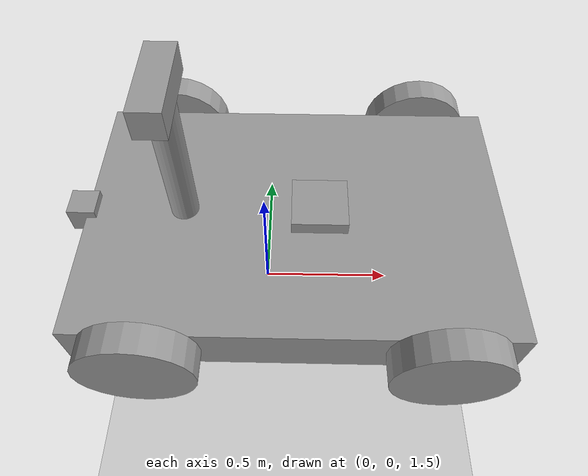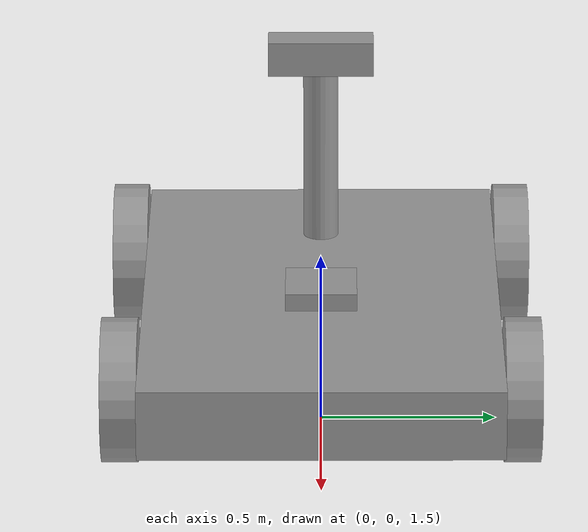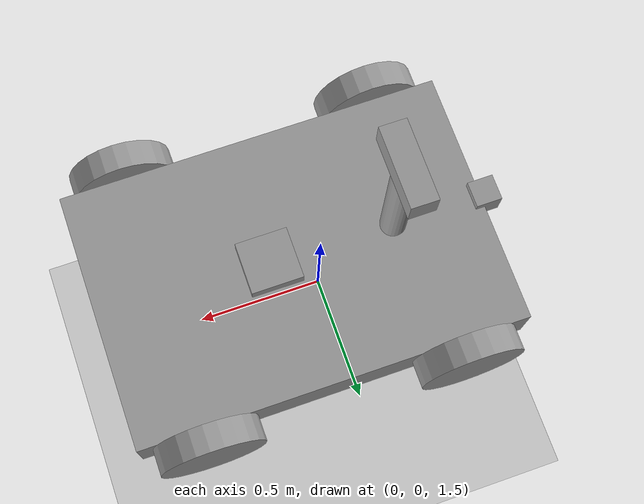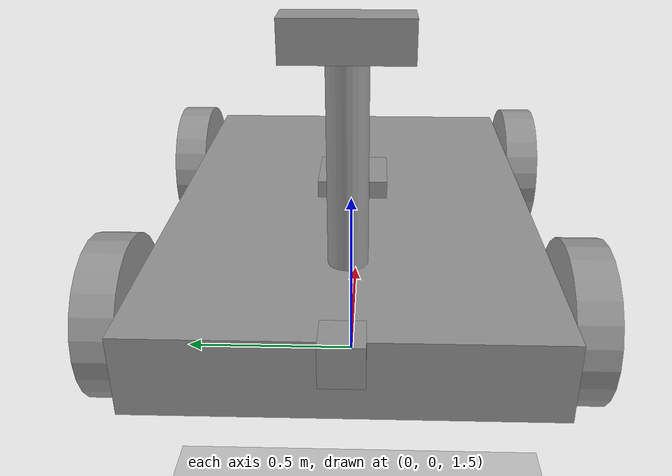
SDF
<!-- World for wheeled_model_enhanced. Created based on test_world. Contains only sun, ground plane and targeted model -->
<sdf version="1.7">
    <world name="test_world">
        <plugin filename="ignition-gazebo-physics-system" name="gz::sim::systems::Physics">
        </plugin>
        <plugin filename="ignition-gazebo-sensors-system" name="gz::sim::systems::Sensors">
            <render_engine>ogre</render_engine>
        </plugin>
        <plugin filename="ignition-gazebo-user-commands-system" name="gz::sim::systems::UserCommands">
        </plugin>
        <plugin filename="ignition-gazebo-scene-broadcaster-system" name="gz::sim::systems::SceneBroadcaster">
        </plugin>
        <plugin
            filename="ignition-gazebo-imu-system"
            name="gz::sim::systems::Imu">
        </plugin>
        <plugin
            filename="ignition-gazebo-navsat-system"
            name="ignition::gazebo::systems::NavSat">
        </plugin>
        <spherical_coordinates>
            <surface_model>EARTH_WGS84</surface_model>
            <world_frame_orientation>ENU</world_frame_orientation>
            <latitude_deg>-22.986687</latitude_deg>
            <longitude_deg>-43.202501</longitude_deg>
            <elevation>0</elevation>
            <heading_deg>0</heading_deg>
        </spherical_coordinates>

        <include>
            <uri>
                https://fuel.gazebosim.org/1.0/OpenRobotics/models/Sun
            </uri>
        </include>
        <include>
            <uri>
                ground_plane
            </uri>
        </include>
        <include>
            <pose>0 0 2 0 0 0</pose>
            <uri>
                wheeled_model_enhanced
            </uri>
        </include>
    </world>
</sdf>

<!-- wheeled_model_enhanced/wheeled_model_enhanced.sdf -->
<sdf version='1.7'>
  <model name='wheeled_model_enhanced'>
    <link name='base_link'>
      <inertial>
        <mass>1</mass>
        <inertia>
          <ixx>0.166667</ixx>
          <ixy>0</ixy>
          <ixz>0</ixz>
          <iyy>0.166667</iyy>
          <iyz>0</iyz>
          <izz>0.166667</izz>
        </inertia>
        <pose>0 0 0 0 -0 0</pose>
      </inertial>
      <pose>0.114286 -0 -0.142857 0 -0 0</pose>
      <gravity>1</gravity>
      <self_collide>0</self_collide>
      <kinematic>0</kinematic>
      <enable_wind>0</enable_wind>
      <visual name='visual'>
        <pose>0 0 0 0 -0 0</pose>
        <geometry>
          <box>
            <size>1.5 1 0.2</size>
          </box>
        </geometry>
        <material>
          <lighting>1</lighting>
          <script>
            <uri>file://media/materials/scripts/gazebo.material</uri>
            <name>Gazebo/Grey</name>
          </script>
          <shader type='pixel'>
            <normal_map>__default__</normal_map>
          </shader>
          <ambient>0.3 0.3 0.3 1</ambient>
          <diffuse>0.7 0.7 0.7 1</diffuse>
          <specular>0.01 0.01 0.01 1</specular>
          <emissive>0 0 0 1</emissive>
        </material>
        <transparency>0</transparency>
        <cast_shadows>1</cast_shadows>
      </visual>
      <collision name='collision'>
        <laser_retro>0</laser_retro>
        <max_contacts>10</max_contacts>
        <pose>0 0 0 0 -0 0</pose>
        <geometry>
          <box>
            <size>1.5 1 0.2</size>
          </box>
        </geometry>
        <surface>
          <friction>
            <ode>
              <mu>1</mu>
              <mu2>1</mu2>
              <fdir1>0 0 0</fdir1>
              <slip1>0</slip1>
              <slip2>0</slip2>
            </ode>
            <torsional>
              <coefficient>1</coefficient>
              <patch_radius>0</patch_radius>
              <surface_radius>0</surface_radius>
              <use_patch_radius>1</use_patch_radius>
              <ode>
                <slip>0</slip>
              </ode>
            </torsional>
          </friction>
          <bounce>
            <restitution_coefficient>0</restitution_coefficient>
            <threshold>1e+06</threshold>
          </bounce>
          <contact>
            <collide_without_contact>0</collide_without_contact>
            <collide_without_contact_bitmask>1</collide_without_contact_bitmask>
            <collide_bitmask>1</collide_bitmask>
            <ode>
              <soft_cfm>0</soft_cfm>
              <soft_erp>0.2</soft_erp>
              <kp>1e+13</kp>
              <kd>1</kd>
              <max_vel>0.01</max_vel>
              <min_depth>0</min_depth>
            </ode>
            <bullet>
              <split_impulse>1</split_impulse>
              <split_impulse_penetration_threshold>-0.01</split_impulse_penetration_threshold>
              <soft_cfm>0</soft_cfm>
              <soft_erp>0.2</soft_erp>
              <kp>1e+13</kp>
              <kd>1</kd>
            </bullet>
          </contact>
        </surface>
      </collision>
    </link>
    <link name='camera_link'>
      <inertial>
        <mass>1</mass>
        <inertia>
          <ixx>0.166667</ixx>
          <ixy>0</ixy>
          <ixz>0</ixz>
          <iyy>0.166667</iyy>
          <iyz>0</iyz>
          <izz>0.166667</izz>
        </inertia>
        <pose>0 0 0 0 -0 0</pose>
      </inertial>
      <pose>-0.285714 0 0.507143 0 -0 3.14</pose>
      <gravity>1</gravity>
      <self_collide>0</self_collide>
      <kinematic>0</kinematic>
      <enable_wind>0</enable_wind>
      <sensor name='camera' type='camera'>
        <camera>
          <horizontal_fov>1.047</horizontal_fov>
          <image>
            <width>320</width>
            <height>240</height>
          </image>
          <clip>
            <near>0.1</near>
            <far>100</far>
          </clip>
        </camera>
        <always_on>1</always_on>
        <update_rate>30</update_rate>
        <visualize>1</visualize>
        <topic>camera</topic>
      </sensor>
      <visual name='visual'>
        <pose>0 0 0 0 -0 0</pose>
        <geometry>
          <box>
            <size>0.1 0.3 0.1</size>
          </box>
        </geometry>
        <material>
          <lighting>1</lighting>
          <script>
            <uri>file://media/materials/scripts/gazebo.material</uri>
            <name>Gazebo/Grey</name>
          </script>
          <shader type='pixel'>
            <normal_map>__default__</normal_map>
          </shader>
          <ambient>0.3 0.3 0.3 1</ambient>
          <diffuse>0.7 0.7 0.7 1</diffuse>
          <specular>0.01 0.01 0.01 1</specular>
          <emissive>0 0 0 1</emissive>
        </material>
        <transparency>0</transparency>
        <cast_shadows>1</cast_shadows>
      </visual>
      <collision name='collision'>
        <laser_retro>0</laser_retro>
        <max_contacts>10</max_contacts>
        <pose>0 0 0 0 -0 0</pose>
        <geometry>
          <box>
            <size>0.1 0.3 0.1</size>
          </box>
        </geometry>
        <surface>
          <friction>
            <ode>
              <mu>1</mu>
              <mu2>1</mu2>
              <fdir1>0 0 0</fdir1>
              <slip1>0</slip1>
              <slip2>0</slip2>
            </ode>
            <torsional>
              <coefficient>1</coefficient>
              <patch_radius>0</patch_radius>
              <surface_radius>0</surface_radius>
              <use_patch_radius>1</use_patch_radius>
              <ode>
                <slip>0</slip>
              </ode>
            </torsional>
          </friction>
          <bounce>
            <restitution_coefficient>0</restitution_coefficient>
            <threshold>1e+06</threshold>
          </bounce>
          <contact>
            <collide_without_contact>0</collide_without_contact>
            <collide_without_contact_bitmask>1</collide_without_contact_bitmask>
            <collide_bitmask>1</collide_bitmask>
            <ode>
              <soft_cfm>0</soft_cfm>
              <soft_erp>0.2</soft_erp>
              <kp>1e+13</kp>
              <kd>1</kd>
              <max_vel>0.01</max_vel>
              <min_depth>0</min_depth>
            </ode>
            <bullet>
              <split_impulse>1</split_impulse>
              <split_impulse_penetration_threshold>-0.01</split_impulse_penetration_threshold>
              <soft_cfm>0</soft_cfm>
              <soft_erp>0.2</soft_erp>
              <kp>1e+13</kp>
              <kd>1</kd>
            </bullet>
          </contact>
        </surface>
      </collision>
    </link>
    <link name='left_back_wheel_link'>
      <inertial>
        <mass>1</mass>
        <inertia>
          <ixx>0.145833</ixx>
          <ixy>0</ixy>
          <ixz>0</ixz>
          <iyy>0.145833</iyy>
          <iyz>0</iyz>
          <izz>0.125</izz>
        </inertia>
        <pose>0 0 0 0 -0 0</pose>
      </inertial>
      <pose>0.614286 -0.55 -0.142857 1.57029 -0 0</pose>
      <gravity>1</gravity>
      <self_collide>0</self_collide>
      <kinematic>0</kinematic>
      <enable_wind>0</enable_wind>
      <visual name='visual'>
        <pose>0 0 0 0 -0 0</pose>
        <geometry>
          <cylinder>
            <radius>0.2</radius>
            <length>0.1</length>
          </cylinder>
        </geometry>
        <material>
          <lighting>1</lighting>
          <script>
            <uri>file://media/materials/scripts/gazebo.material</uri>
            <name>Gazebo/Grey</name>
          </script>
          <shader type='pixel'>
            <normal_map>__default__</normal_map>
          </shader>
          <ambient>0.3 0.3 0.3 1</ambient>
          <diffuse>0.7 0.7 0.7 1</diffuse>
          <specular>0.01 0.01 0.01 1</specular>
          <emissive>0 0 0 1</emissive>
        </material>
        <transparency>0</transparency>
        <cast_shadows>1</cast_shadows>
      </visual>
      <collision name='collision'>
        <laser_retro>0</laser_retro>
        <max_contacts>10</max_contacts>
        <pose>0 0 0 0 -0 0</pose>
        <geometry>
          <cylinder>
            <radius>0.2</radius>
            <length>0.1</length>
          </cylinder>
        </geometry>
        <surface>
          <friction>
            <ode>
              <mu>1</mu>
              <mu2>1</mu2>
              <fdir1>0 0 0</fdir1>
              <slip1>0</slip1>
              <slip2>0</slip2>
            </ode>
            <torsional>
              <coefficient>1</coefficient>
              <patch_radius>0</patch_radius>
              <surface_radius>0</surface_radius>
              <use_patch_radius>1</use_patch_radius>
              <ode>
                <slip>0</slip>
              </ode>
            </torsional>
          </friction>
          <bounce>
            <restitution_coefficient>0</restitution_coefficient>
            <threshold>1e+06</threshold>
          </bounce>
          <contact>
            <collide_without_contact>0</collide_without_contact>
            <collide_without_contact_bitmask>1</collide_without_contact_bitmask>
            <collide_bitmask>1</collide_bitmask>
            <ode>
              <soft_cfm>0</soft_cfm>
              <soft_erp>0.2</soft_erp>
              <kp>1e+13</kp>
              <kd>1</kd>
              <max_vel>0.01</max_vel>
              <min_depth>0</min_depth>
            </ode>
            <bullet>
              <split_impulse>1</split_impulse>
              <split_impulse_penetration_threshold>-0.01</split_impulse_penetration_threshold>
              <soft_cfm>0</soft_cfm>
              <soft_erp>0.2</soft_erp>
              <kp>1e+13</kp>
              <kd>1</kd>
            </bullet>
          </contact>
        </surface>
      </collision>
    </link>
    <link name='left_front_wheel_link'>
      <inertial>
        <mass>1</mass>
        <inertia>
          <ixx>0.145833</ixx>
          <ixy>0</ixy>
          <ixz>0</ixz>
          <iyy>0.145833</iyy>
          <iyz>0</iyz>
          <izz>0.125</izz>
        </inertia>
        <pose>0 0 0 0 -0 0</pose>
      </inertial>
      <pose>-0.385714 -0.55 -0.142857 1.57029 -0 0</pose>
      <gravity>1</gravity>
      <self_collide>0</self_collide>
      <kinematic>0</kinematic>
      <enable_wind>0</enable_wind>
      <visual name='visual'>
        <pose>0 0 0 0 -0 0</pose>
        <geometry>
          <cylinder>
            <radius>0.2</radius>
            <length>0.1</length>
          </cylinder>
        </geometry>
        <material>
          <lighting>1</lighting>
          <script>
            <uri>file://media/materials/scripts/gazebo.material</uri>
            <name>Gazebo/Grey</name>
          </script>
          <shader type='pixel'>
            <normal_map>__default__</normal_map>
          </shader>
          <ambient>0.3 0.3 0.3 1</ambient>
          <diffuse>0.7 0.7 0.7 1</diffuse>
          <specular>0.01 0.01 0.01 1</specular>
          <emissive>0 0 0 1</emissive>
        </material>
        <transparency>0</transparency>
        <cast_shadows>1</cast_shadows>
      </visual>
      <collision name='collision'>
        <laser_retro>0</laser_retro>
        <max_contacts>10</max_contacts>
        <pose>0 0 0 0 -0 0</pose>
        <geometry>
          <cylinder>
            <radius>0.2</radius>
            <length>0.1</length>
          </cylinder>
        </geometry>
        <surface>
          <friction>
            <ode>
              <mu>1</mu>
              <mu2>1</mu2>
              <fdir1>0 0 0</fdir1>
              <slip1>0</slip1>
              <slip2>0</slip2>
            </ode>
            <torsional>
              <coefficient>1</coefficient>
              <patch_radius>0</patch_radius>
              <surface_radius>0</surface_radius>
              <use_patch_radius>1</use_patch_radius>
              <ode>
                <slip>0</slip>
              </ode>
            </torsional>
          </friction>
          <bounce>
            <restitution_coefficient>0</restitution_coefficient>
            <threshold>1e+06</threshold>
          </bounce>
          <contact>
            <collide_without_contact>0</collide_without_contact>
            <collide_without_contact_bitmask>1</collide_without_contact_bitmask>
            <collide_bitmask>1</collide_bitmask>
            <ode>
              <soft_cfm>0</soft_cfm>
              <soft_erp>0.2</soft_erp>
              <kp>1e+13</kp>
              <kd>1</kd>
              <max_vel>0.01</max_vel>
              <min_depth>0</min_depth>
            </ode>
            <bullet>
              <split_impulse>1</split_impulse>
              <split_impulse_penetration_threshold>-0.01</split_impulse_penetration_threshold>
              <soft_cfm>0</soft_cfm>
              <soft_erp>0.2</soft_erp>
              <kp>1e+13</kp>
              <kd>1</kd>
            </bullet>
          </contact>
        </surface>
      </collision>
    </link>
    <link name='lidar_link'>
      <inertial>
        <mass>1</mass>
        <inertia>
          <ixx>0.166667</ixx>
          <ixy>0</ixy>
          <ixz>0</ixz>
          <iyy>0.166667</iyy>
          <iyz>0</iyz>
          <izz>0.166667</izz>
        </inertia>
        <pose>0 0 0 0 -0 0</pose>
      </inertial>
      <pose>-0.65 0 -0.062226 -1e-06 1e-06 3.14159</pose>
      <gravity>1</gravity>
      <self_collide>0</self_collide>
      <kinematic>0</kinematic>
      <enable_wind>0</enable_wind>
      <sensor name='gpu_lidar' type='gpu_lidar'>
        <topic>lidar</topic>
        <update_rate>10</update_rate>
        <lidar>
          <scan>
            <horizontal>
              <samples>640</samples>
              <resolution>1</resolution>
              <min_angle>-1.396263</min_angle>
              <max_angle>1.396263</max_angle>
            </horizontal>
            <vertical>
              <samples>16</samples>
              <resolution>1</resolution>
              <min_angle>-0.261799</min_angle>
              <max_angle>0.261799</max_angle>
            </vertical>
          </scan>
          <range>
            <min>0.08</min>
            <max>10.0</max>
            <resolution>0.01</resolution>
          </range>
        </lidar>
        <alwaysOn>1</alwaysOn>
        <visualize>true</visualize>
      </sensor>
      <visual name='visual'>
        <pose>0 0 0 0 -0 0</pose>
        <geometry>
          <box>
            <size>0.1 0.1 0.1</size>
          </box>
        </geometry>
        <material>
          <lighting>1</lighting>
          <script>
            <uri>file://media/materials/scripts/gazebo.material</uri>
            <name>Gazebo/Grey</name>
          </script>
          <shader type='pixel'>
            <normal_map>__default__</normal_map>
          </shader>
          <ambient>0.3 0.3 0.3 1</ambient>
          <diffuse>0.7 0.7 0.7 1</diffuse>
          <specular>0.01 0.01 0.01 1</specular>
          <emissive>0 0 0 1</emissive>
        </material>
        <transparency>0</transparency>
        <cast_shadows>1</cast_shadows>
      </visual>
      <collision name='collision'>
        <laser_retro>0</laser_retro>
        <max_contacts>10</max_contacts>
        <pose>0 0 0 0 -0 0</pose>
        <geometry>
          <box>
            <size>0.1 0.1 0.1</size>
          </box>
        </geometry>
        <surface>
          <friction>
            <ode>
              <mu>1</mu>
              <mu2>1</mu2>
              <fdir1>0 0 0</fdir1>
              <slip1>0</slip1>
              <slip2>0</slip2>
            </ode>
            <torsional>
              <coefficient>1</coefficient>
              <patch_radius>0</patch_radius>
              <surface_radius>0</surface_radius>
              <use_patch_radius>1</use_patch_radius>
              <ode>
                <slip>0</slip>
              </ode>
            </torsional>
          </friction>
          <bounce>
            <restitution_coefficient>0</restitution_coefficient>
            <threshold>1e+06</threshold>
          </bounce>
          <contact>
            <collide_without_contact>0</collide_without_contact>
            <collide_without_contact_bitmask>1</collide_without_contact_bitmask>
            <collide_bitmask>1</collide_bitmask>
            <ode>
              <soft_cfm>0</soft_cfm>
              <soft_erp>0.2</soft_erp>
              <kp>1e+13</kp>
              <kd>1</kd>
              <max_vel>0.01</max_vel>
              <min_depth>0</min_depth>
            </ode>
            <bullet>
              <split_impulse>1</split_impulse>
              <split_impulse_penetration_threshold>-0.01</split_impulse_penetration_threshold>
              <soft_cfm>0</soft_cfm>
              <soft_erp>0.2</soft_erp>
              <kp>1e+13</kp>
              <kd>1</kd>
            </bullet>
          </contact>
        </surface>
      </collision>
    </link>
    <link name='right_back_wheel_link'>
      <inertial>
        <mass>1</mass>
        <inertia>
          <ixx>0.145833</ixx>
          <ixy>0</ixy>
          <ixz>0</ixz>
          <iyy>0.145833</iyy>
          <iyz>0</iyz>
          <izz>0.125</izz>
        </inertia>
        <pose>0 0 0 0 -0 0</pose>
      </inertial>
      <pose>0.614286 0.55 -0.142857 1.57029 -0 0</pose>
      <gravity>1</gravity>
      <self_collide>0</self_collide>
      <kinematic>0</kinematic>
      <enable_wind>0</enable_wind>
      <visual name='visual'>
        <pose>0 0 0 0 -0 0</pose>
        <geometry>
          <cylinder>
            <radius>0.2</radius>
            <length>0.1</length>
          </cylinder>
        </geometry>
        <material>
          <lighting>1</lighting>
          <script>
            <uri>file://media/materials/scripts/gazebo.material</uri>
            <name>Gazebo/Grey</name>
          </script>
          <shader type='pixel'>
            <normal_map>__default__</normal_map>
          </shader>
          <ambient>0.3 0.3 0.3 1</ambient>
          <diffuse>0.7 0.7 0.7 1</diffuse>
          <specular>0.01 0.01 0.01 1</specular>
          <emissive>0 0 0 1</emissive>
        </material>
        <transparency>0</transparency>
        <cast_shadows>1</cast_shadows>
      </visual>
      <collision name='collision'>
        <laser_retro>0</laser_retro>
        <max_contacts>10</max_contacts>
        <pose>0 0 0 0 -0 0</pose>
        <geometry>
          <cylinder>
            <radius>0.2</radius>
            <length>0.1</length>
          </cylinder>
        </geometry>
        <surface>
          <friction>
            <ode>
              <mu>1</mu>
              <mu2>1</mu2>
              <fdir1>0 0 0</fdir1>
              <slip1>0</slip1>
              <slip2>0</slip2>
            </ode>
            <torsional>
              <coefficient>1</coefficient>
              <patch_radius>0</patch_radius>
              <surface_radius>0</surface_radius>
              <use_patch_radius>1</use_patch_radius>
              <ode>
                <slip>0</slip>
              </ode>
            </torsional>
          </friction>
          <bounce>
            <restitution_coefficient>0</restitution_coefficient>
            <threshold>1e+06</threshold>
          </bounce>
          <contact>
            <collide_without_contact>0</collide_without_contact>
            <collide_without_contact_bitmask>1</collide_without_contact_bitmask>
            <collide_bitmask>1</collide_bitmask>
            <ode>
              <soft_cfm>0</soft_cfm>
              <soft_erp>0.2</soft_erp>
              <kp>1e+13</kp>
              <kd>1</kd>
              <max_vel>0.01</max_vel>
              <min_depth>0</min_depth>
            </ode>
            <bullet>
              <split_impulse>1</split_impulse>
              <split_impulse_penetration_threshold>-0.01</split_impulse_penetration_threshold>
              <soft_cfm>0</soft_cfm>
              <soft_erp>0.2</soft_erp>
              <kp>1e+13</kp>
              <kd>1</kd>
            </bullet>
          </contact>
        </surface>
      </collision>
    </link>
    <link name='right_front_wheel_link'>
      <inertial>
        <mass>1</mass>
        <inertia>
          <ixx>0.145833</ixx>
          <ixy>0</ixy>
          <ixz>0</ixz>
          <iyy>0.145833</iyy>
          <iyz>0</iyz>
          <izz>0.125</izz>
        </inertia>
        <pose>0 0 0 0 -0 0</pose>
      </inertial>
      <pose>-0.385714 0.55 -0.142857 1.57029 -0 0</pose>
      <gravity>1</gravity>
      <self_collide>0</self_collide>
      <kinematic>0</kinematic>
      <enable_wind>0</enable_wind>
      <visual name='visual'>
        <pose>0 0 0 0 -0 0</pose>
        <geometry>
          <cylinder>
            <radius>0.2</radius>
            <length>0.1</length>
          </cylinder>
        </geometry>
        <material>
          <lighting>1</lighting>
          <script>
            <uri>file://media/materials/scripts/gazebo.material</uri>
            <name>Gazebo/Grey</name>
          </script>
          <shader type='pixel'>
            <normal_map>__default__</normal_map>
          </shader>
          <ambient>0.3 0.3 0.3 1</ambient>
          <diffuse>0.7 0.7 0.7 1</diffuse>
          <specular>0.01 0.01 0.01 1</specular>
          <emissive>0 0 0 1</emissive>
        </material>
        <transparency>0</transparency>
        <cast_shadows>1</cast_shadows>
      </visual>
      <collision name='collision'>
        <laser_retro>0</laser_retro>
        <max_contacts>10</max_contacts>
        <pose>0 0 0 0 -0 0</pose>
        <geometry>
          <cylinder>
            <radius>0.2</radius>
            <length>0.1</length>
          </cylinder>
        </geometry>
        <surface>
          <friction>
            <ode>
              <mu>1</mu>
              <mu2>1</mu2>
              <fdir1>0 0 0</fdir1>
              <slip1>0</slip1>
              <slip2>0</slip2>
            </ode>
            <torsional>
              <coefficient>1</coefficient>
              <patch_radius>0</patch_radius>
              <surface_radius>0</surface_radius>
              <use_patch_radius>1</use_patch_radius>
              <ode>
                <slip>0</slip>
              </ode>
            </torsional>
          </friction>
          <bounce>
            <restitution_coefficient>0</restitution_coefficient>
            <threshold>1e+06</threshold>
          </bounce>
          <contact>
            <collide_without_contact>0</collide_without_contact>
            <collide_without_contact_bitmask>1</collide_without_contact_bitmask>
            <collide_bitmask>1</collide_bitmask>
            <ode>
              <soft_cfm>0</soft_cfm>
              <soft_erp>0.2</soft_erp>
              <kp>1e+13</kp>
              <kd>1</kd>
              <max_vel>0.01</max_vel>
              <min_depth>0</min_depth>
            </ode>
            <bullet>
              <split_impulse>1</split_impulse>
              <split_impulse_penetration_threshold>-0.01</split_impulse_penetration_threshold>
              <soft_cfm>0</soft_cfm>
              <soft_erp>0.2</soft_erp>
              <kp>1e+13</kp>
              <kd>1</kd>
            </bullet>
          </contact>
        </surface>
      </collision>
    </link>
    <link name='rod_link'>
      <inertial>
        <mass>1</mass>
        <inertia>
          <ixx>0.145833</ixx>
          <ixy>0</ixy>
          <ixz>0</ixz>
          <iyy>0.145833</iyy>
          <iyz>0</iyz>
          <izz>0.125</izz>
        </inertia>
        <pose>0 0 0 0 -0 0</pose>
      </inertial>
      <pose>-0.285714 -0 0.207143 0 -0 0</pose>
      <gravity>1</gravity>
      <self_collide>0</self_collide>
      <kinematic>0</kinematic>
      <enable_wind>0</enable_wind>
      <visual name='visual'>
        <pose>0 0 0 0 -0 0</pose>
        <geometry>
          <cylinder>
            <radius>0.05</radius>
            <length>0.5</length>
          </cylinder>
        </geometry>
        <material>
          <lighting>1</lighting>
          <script>
            <uri>file://media/materials/scripts/gazebo.material</uri>
            <name>Gazebo/Grey</name>
          </script>
          <shader type='pixel'>
            <normal_map>__default__</normal_map>
          </shader>
          <ambient>0.3 0.3 0.3 1</ambient>
          <diffuse>0.7 0.7 0.7 1</diffuse>
          <specular>0.01 0.01 0.01 1</specular>
          <emissive>0 0 0 1</emissive>
        </material>
        <transparency>0</transparency>
        <cast_shadows>1</cast_shadows>
      </visual>
      <collision name='collision'>
        <laser_retro>0</laser_retro>
        <max_contacts>10</max_contacts>
        <pose>0 0 0 0 -0 0</pose>
        <geometry>
          <cylinder>
            <radius>0.05</radius>
            <length>0.5</length>
          </cylinder>
        </geometry>
        <surface>
          <friction>
            <ode>
              <mu>1</mu>
              <mu2>1</mu2>
              <fdir1>0 0 0</fdir1>
              <slip1>0</slip1>
              <slip2>0</slip2>
            </ode>
            <torsional>
              <coefficient>1</coefficient>
              <patch_radius>0</patch_radius>
              <surface_radius>0</surface_radius>
              <use_patch_radius>1</use_patch_radius>
              <ode>
                <slip>0</slip>
              </ode>
            </torsional>
          </friction>
          <bounce>
            <restitution_coefficient>0</restitution_coefficient>
            <threshold>1e+06</threshold>
          </bounce>
          <contact>
            <collide_without_contact>0</collide_without_contact>
            <collide_without_contact_bitmask>1</collide_without_contact_bitmask>
            <collide_bitmask>1</collide_bitmask>
            <ode>
              <soft_cfm>0</soft_cfm>
              <soft_erp>0.2</soft_erp>
              <kp>1e+13</kp>
              <kd>1</kd>
              <max_vel>0.01</max_vel>
              <min_depth>0</min_depth>
            </ode>
            <bullet>
              <split_impulse>1</split_impulse>
              <split_impulse_penetration_threshold>-0.01</split_impulse_penetration_threshold>
              <soft_cfm>0</soft_cfm>
              <soft_erp>0.2</soft_erp>
              <kp>1e+13</kp>
              <kd>1</kd>
            </bullet>
          </contact>
        </surface>
      </collision>
    </link>
    <link name='sensor_block_link'>
      <inertial>
        <mass>1</mass>
        <inertia>
          <ixx>0.166667</ixx>
          <ixy>0</ixy>
          <ixz>0</ixz>
          <iyy>0.166667</iyy>
          <iyz>0</iyz>
          <izz>0.166667</izz>
        </inertia>
        <pose>0 0 0 0 -0 0</pose>
      </inertial>
      <pose>0.2 0 -0.017857 -2e-06 -5e-06 3.14159</pose>
      <gravity>1</gravity>
      <self_collide>0</self_collide>
      <kinematic>0</kinematic>
      <enable_wind>0</enable_wind>
      <sensor name='imu' type='imu'>
        <always_on>1</always_on>
        <update_rate>100</update_rate>
        <visualize>1</visualize>
        <topic>imu</topic>
        <enable_metrics>1</enable_metrics>
        <imu/>
      </sensor>
      <sensor name='navsat' type='navsat'>
        <always_on>1</always_on>
        <update_rate>10</update_rate>
        <topic>wheeled_model_enhanced/navsat</topic>
        <gps/>
      </sensor>
      <visual name='visual'>
        <pose>0 0 0 0 -0 0</pose>
        <geometry>
          <box>
            <size>0.2 0.2 0.05</size>
          </box>
        </geometry>
        <material>
          <lighting>1</lighting>
          <script>
            <uri>file://media/materials/scripts/gazebo.material</uri>
            <name>Gazebo/Grey</name>
          </script>
          <shader type='pixel'>
            <normal_map>__default__</normal_map>
          </shader>
          <ambient>0.3 0.3 0.3 1</ambient>
          <diffuse>0.7 0.7 0.7 1</diffuse>
          <specular>0.01 0.01 0.01 1</specular>
          <emissive>0 0 0 1</emissive>
        </material>
        <transparency>0</transparency>
        <cast_shadows>1</cast_shadows>
      </visual>
      <collision name='collision'>
        <laser_retro>0</laser_retro>
        <max_contacts>10</max_contacts>
        <pose>0 0 0 0 -0 0</pose>
        <geometry>
          <box>
            <size>0.2 0.2 0.05</size>
          </box>
        </geometry>
        <surface>
          <friction>
            <ode>
              <mu>1</mu>
              <mu2>1</mu2>
              <fdir1>0 0 0</fdir1>
              <slip1>0</slip1>
              <slip2>0</slip2>
            </ode>
            <torsional>
              <coefficient>1</coefficient>
              <patch_radius>0</patch_radius>
              <surface_radius>0</surface_radius>
              <use_patch_radius>1</use_patch_radius>
              <ode>
                <slip>0</slip>
              </ode>
            </torsional>
          </friction>
          <bounce>
            <restitution_coefficient>0</restitution_coefficient>
            <threshold>1e+06</threshold>
          </bounce>
          <contact>
            <collide_without_contact>0</collide_without_contact>
            <collide_without_contact_bitmask>1</collide_without_contact_bitmask>
            <collide_bitmask>1</collide_bitmask>
            <ode>
              <soft_cfm>0</soft_cfm>
              <soft_erp>0.2</soft_erp>
              <kp>1e+13</kp>
              <kd>1</kd>
              <max_vel>0.01</max_vel>
              <min_depth>0</min_depth>
            </ode>
            <bullet>
              <split_impulse>1</split_impulse>
              <split_impulse_penetration_threshold>-0.01</split_impulse_penetration_threshold>
              <soft_cfm>0</soft_cfm>
              <soft_erp>0.2</soft_erp>
              <kp>1e+13</kp>
              <kd>1</kd>
            </bullet>
          </contact>
        </surface>
      </collision>
    </link>
    <joint name='base_rod_joint' type='revolute'>
      <parent>base_link</parent>
      <child>rod_link</child>
      <pose>0 0 0 0 -0 0</pose>
      <axis>
        <xyz>0 0 1</xyz>
        <limit>
          <lower>-1.79769e+308</lower>
          <upper>1.79769e+308</upper>
          <effort>-1</effort>
          <velocity>-1</velocity>
        </limit>
        <dynamics>
          <spring_reference>0</spring_reference>
          <spring_stiffness>0</spring_stiffness>
          <damping>0.5</damping>
          <friction>0</friction>
        </dynamics>
      </axis>
      <physics>
        <ode>
          <limit>
            <cfm>0</cfm>
            <erp>0.2</erp>
          </limit>
          <suspension>
            <cfm>0</cfm>
            <erp>0.2</erp>
          </suspension>
        </ode>
      </physics>
    </joint>
    <joint name='base_sensor_block_joint' type='fixed'>
      <parent>base_link</parent>
      <child>sensor_block_link</child>
      <pose>0 0 0 0 -0 0</pose>
      <physics>
        <ode>
          <limit>
            <cfm>0</cfm>
            <erp>0.2</erp>
          </limit>
          <suspension>
            <cfm>0</cfm>
            <erp>0.2</erp>
          </suspension>
        </ode>
      </physics>
    </joint>
    <joint name='left_back_wheel_joint' type='revolute'>
      <parent>base_link</parent>
      <child>left_back_wheel_link</child>
      <pose>0 0 0 0 -0 0</pose>
      <axis>
        <xyz>0 0 1</xyz>
        <limit>
          <lower>-1.79769e+308</lower>
          <upper>1.79769e+308</upper>
          <effort>-1</effort>
          <velocity>-1</velocity>
        </limit>
        <dynamics>
          <spring_reference>0</spring_reference>
          <spring_stiffness>0</spring_stiffness>
          <damping>0</damping>
          <friction>0</friction>
        </dynamics>
      </axis>
      <physics>
        <ode>
          <limit>
            <cfm>0</cfm>
            <erp>0.2</erp>
          </limit>
          <suspension>
            <cfm>0</cfm>
            <erp>0.2</erp>
          </suspension>
        </ode>
      </physics>
    </joint>
    <joint name='left_front_wheel_joint' type='revolute'>
      <parent>base_link</parent>
      <child>left_front_wheel_link</child>
      <pose>0 0 0 0 -0 0</pose>
      <axis>
        <xyz>0 0 1</xyz>
        <limit>
          <lower>-1.79769e+308</lower>
          <upper>1.79769e+308</upper>
          <effort>-1</effort>
          <velocity>-1</velocity>
        </limit>
        <dynamics>
          <spring_reference>0</spring_reference>
          <spring_stiffness>0</spring_stiffness>
          <damping>0</damping>
          <friction>0</friction>
        </dynamics>
      </axis>
      <physics>
        <ode>
          <limit>
            <cfm>0</cfm>
            <erp>0.2</erp>
          </limit>
          <suspension>
            <cfm>0</cfm>
            <erp>0.2</erp>
          </suspension>
        </ode>
      </physics>
    </joint>
    <joint name='lidar_base_joint' type='fixed'>
      <parent>lidar_link</parent>
      <child>base_link</child>
      <pose>0 0 0 0 -0 0</pose>
      <physics>
        <ode>
          <limit>
            <cfm>0</cfm>
            <erp>0.2</erp>
          </limit>
          <suspension>
            <cfm>0</cfm>
            <erp>0.2</erp>
          </suspension>
        </ode>
      </physics>
    </joint>
    <joint name='right_back_wheel_joint' type='revolute'>
      <parent>base_link</parent>
      <child>right_back_wheel_link</child>
      <pose>0 0 0 0 -0 0</pose>
      <axis>
        <xyz>0 0 1</xyz>
        <limit>
          <lower>-1.79769e+308</lower>
          <upper>1.79769e+308</upper>
          <effort>-1</effort>
          <velocity>-1</velocity>
        </limit>
        <dynamics>
          <spring_reference>0</spring_reference>
          <spring_stiffness>0</spring_stiffness>
          <damping>0</damping>
          <friction>0</friction>
        </dynamics>
      </axis>
      <physics>
        <ode>
          <limit>
            <cfm>0</cfm>
            <erp>0.2</erp>
          </limit>
          <suspension>
            <cfm>0</cfm>
            <erp>0.2</erp>
          </suspension>
        </ode>
      </physics>
    </joint>
    <joint name='right_front_wheel_joint' type='revolute'>
      <parent>base_link</parent>
      <child>right_front_wheel_link</child>
      <pose>0 0 0 0 -0 0</pose>
      <axis>
        <xyz>0 0 1</xyz>
        <limit>
          <lower>-1.79769e+308</lower>
          <upper>1.79769e+308</upper>
          <effort>-1</effort>
          <velocity>-1</velocity>
        </limit>
        <dynamics>
          <spring_reference>0</spring_reference>
          <spring_stiffness>0</spring_stiffness>
          <damping>0</damping>
          <friction>0</friction>
        </dynamics>
      </axis>
      <physics>
        <ode>
          <limit>
            <cfm>0</cfm>
            <erp>0.2</erp>
          </limit>
          <suspension>
            <cfm>0</cfm>
            <erp>0.2</erp>
          </suspension>
        </ode>
      </physics>
    </joint>
    <joint name='rod_camera_joint' type='fixed'>
      <parent>rod_link</parent>
      <child>camera_link</child>
      <pose>0 0 0 0 -0 0</pose>
      <physics>
        <ode>
          <limit>
            <cfm>0</cfm>
            <erp>0.2</erp>
          </limit>
          <suspension>
            <cfm>0</cfm>
            <erp>0.2</erp>
          </suspension>
        </ode>
      </physics>
    </joint>
    <static>0</static>
    <allow_auto_disable>1</allow_auto_disable>
    <plugin name='gz::sim::systems::DiffDrive' filename='ignition-gazebo-diff-drive-system'>
      <left_joint>left_front_wheel_joint</left_joint>
      <left_joint>left_back_wheel_joint</left_joint>
      <right_joint>right_front_wheel_joint</right_joint>
      <right_joint>right_back_wheel_joint</right_joint>
      <wheel_separation>1.1</wheel_separation>
      <wheel_radius>0.2</wheel_radius>
      <max_linear_acceleration>2</max_linear_acceleration>
      <min_linear_acceleration>-2</min_linear_acceleration>
      <max_angular_acceleration>1</max_angular_acceleration>
      <min_angular_acceleration>-1</min_angular_acceleration>
      <max_linear_velocity>10</max_linear_velocity>
      <min_linear_velocity>-10</min_linear_velocity>
      <max_angular_velocity>1</max_angular_velocity>
      <min_angular_velocity>-1</min_angular_velocity>
    </plugin>
    <plugin name='gz::sim::systems::JointPositionController' filename='ignition-gazebo-joint-position-controller-system'>
      <joint_name>base_rod_joint</joint_name>
      <topic>camera_pos_cmd</topic>
      <p_gain>3</p_gain>
      <i_gain>0.1</i_gain>
      <d_gain>1.2</d_gain>
      <i_max>1</i_max>
      <i_min>-1</i_min>
      <cmd_max>1000</cmd_max>
      <cmd_min>-1000</cmd_min>
    </plugin>
  </model>
</sdf>
